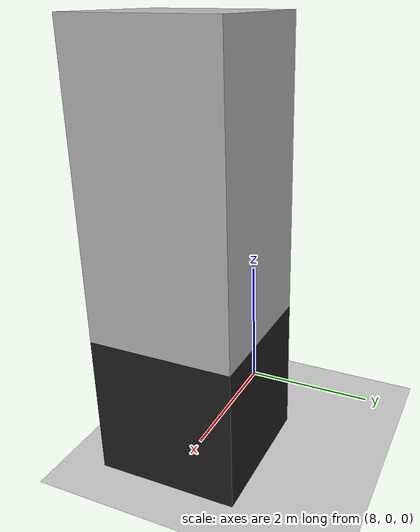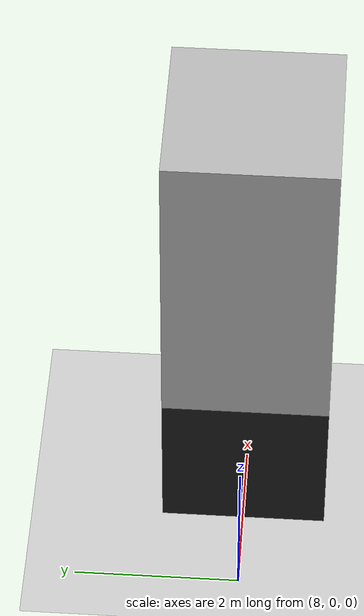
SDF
<?xml version="1.0" ?>
<sdf version="1.5">
  <world name="default">
    <!-- A global light source -->
    <include>
      <uri>model://sun</uri>
    </include>
    <!-- A ground plane -->
    <include>
      <uri>model://ground_plane</uri>
    </include>
    <include>
      <uri>model://asphalt_plane</uri>
    </include>
    <physics name='default_physics' default='0' type='ode'>
      <gravity>0 0 -9.8066</gravity>
      <ode>
        <solver>
          <type>quick</type>
          <iters>10</iters>
          <sor>1.3</sor>
          <use_dynamic_moi_rescaling>0</use_dynamic_moi_rescaling>
        </solver>
        <constraints>
          <cfm>0</cfm>
          <erp>0.2</erp>
          <contact_max_correcting_vel>100</contact_max_correcting_vel>
          <contact_surface_layer>0.001</contact_surface_layer>
        </constraints>
      </ode>
      <max_step_size>0.004</max_step_size>
      <real_time_factor>1</real_time_factor>
      <real_time_update_rate>250</real_time_update_rate>
      <magnetic_field>6.0e-6 2.3e-5 -4.2e-5</magnetic_field>
    </physics>
    <model name='base_1'>
      <pose frame=''>10 0 1 0 -0 0</pose>
      <link name='link'>
        <inertial>
          <mass>1</mass>
          <inertia>
            <ixx>0.166667</ixx>
            <ixy>0</ixy>
            <ixz>0</ixz>
            <iyy>0.166667</iyy>
            <iyz>0</iyz>
            <izz>0.166667</izz>
          </inertia>
        </inertial>
        <collision name='collision'>
          <geometry>
            <box>
              <size>2 2 2</size>
            </box>
          </geometry>
          <max_contacts>10</max_contacts>
          <surface>
            <contact>
              <ode/>
            </contact>
            <bounce/>
            <friction>
              <torsional>
                <ode/>
              </torsional>
              <ode/>
            </friction>
          </surface>
        </collision>
        <visual name='visual'>
          <geometry>
            <box>
              <size>2 2 2</size>
            </box>
          </geometry>
          <material>
            <script>
              <uri>file://media/materials/scripts/picture.material</uri>
              <name>wallpaper/black</name>
            </script>
          </material>
        </visual>
        <self_collide>0</self_collide>
        <enable_wind>0</enable_wind>
        <kinematic>0</kinematic>
      </link>
    </model>
    <model name='obstacle_1'>
      <pose frame=''>10 0 4 0 -0 0</pose>
      <link name='link'>
        <inertial>
          <mass>1</mass>
          <inertia>
            <ixx>0.166667</ixx>
            <ixy>0</ixy>
            <ixz>0</ixz>
            <iyy>0.166667</iyy>
            <iyz>0</iyz>
            <izz>0.166667</izz>
          </inertia>
        </inertial>
        <collision name='collision'>
          <geometry>
            <box>
              <size>2 2 4</size>
            </box>
          </geometry>
          <max_contacts>10</max_contacts>
          <surface>
            <contact>
              <ode/>
            </contact>
            <bounce/>
            <friction>
              <torsional>
                <ode/>
              </torsional>
              <ode/>
            </friction>
          </surface>
        </collision>
        <visual name='visual'>
          <geometry>
            <box>
              <size>2 2 4</size>
            </box>
          </geometry>
          <material>
            <script>
              <uri>file://media/materials/scripts/picture.material</uri>
              <name>wallpaper/cat</name>
            </script>
          </material>
        </visual>
        <self_collide>0</self_collide>
        <enable_wind>0</enable_wind>
        <kinematic>0</kinematic>
      </link>
    </model>
  </world>
</sdf>
